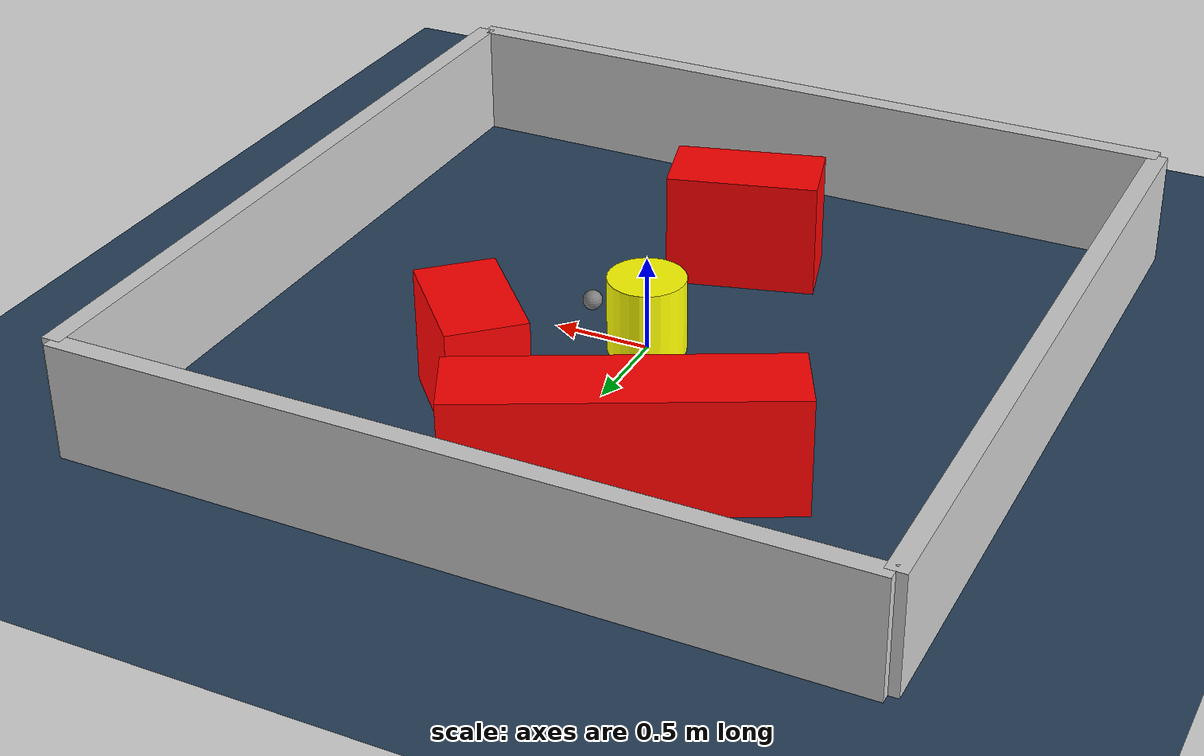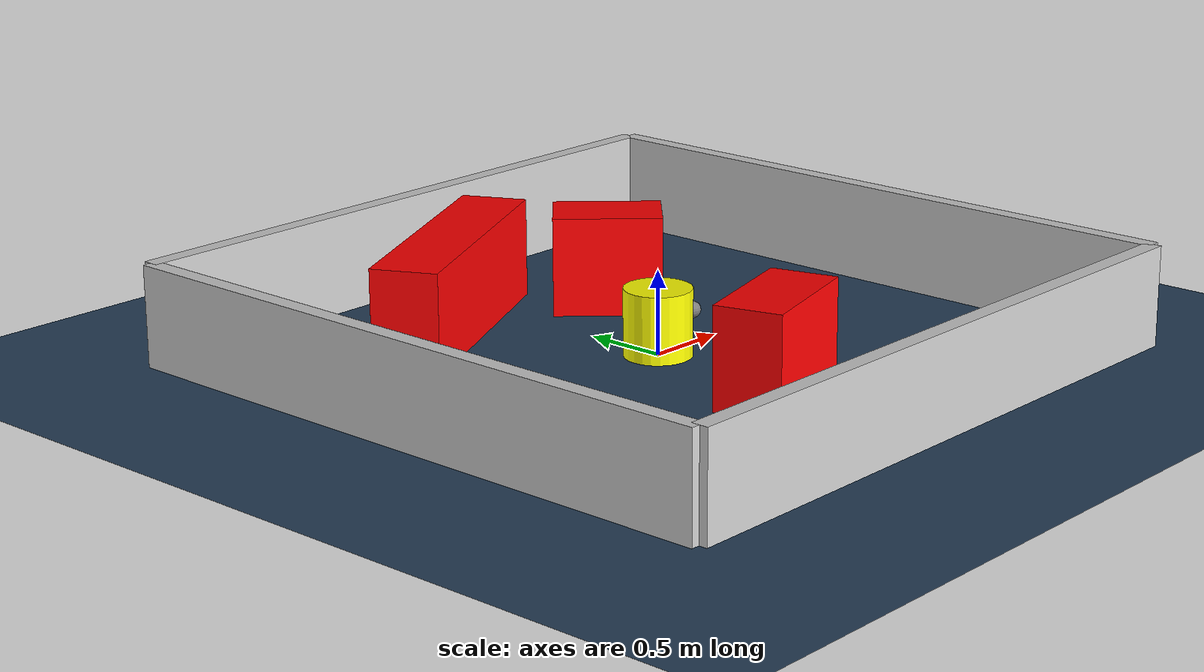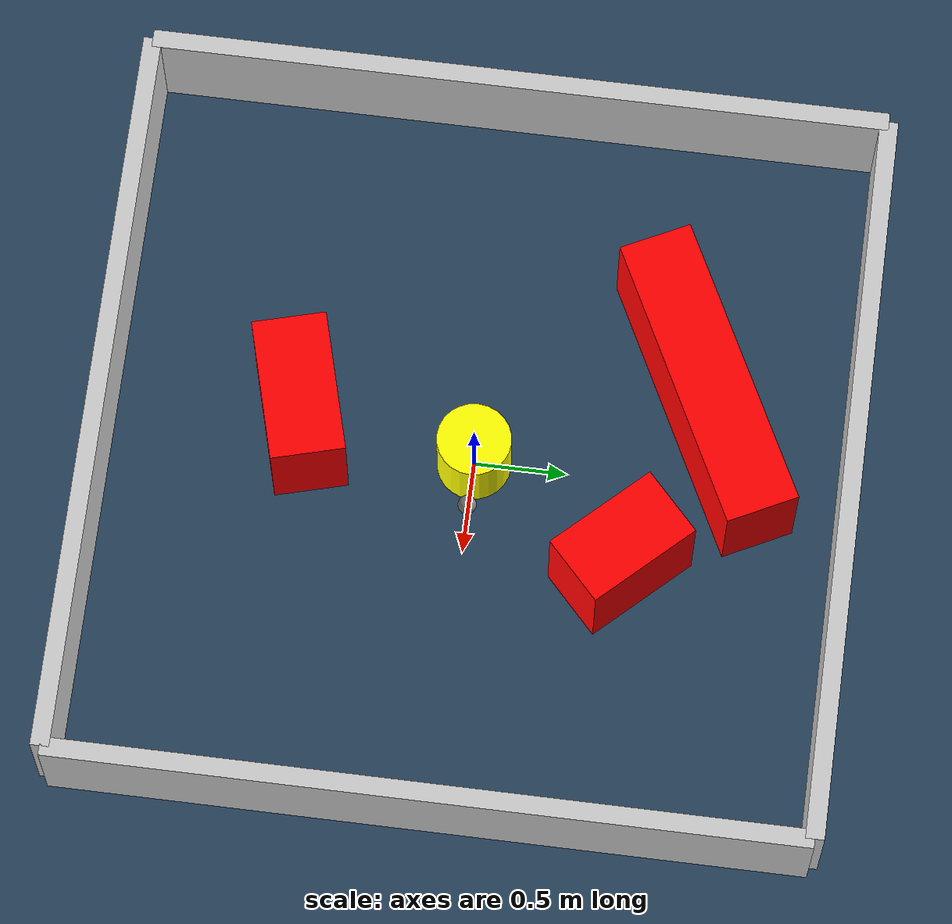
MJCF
<?xml version="1.0" ?>
<mujoco model="generated_environment">
  <option timestep="0.01" integrator="RK4" cone="elliptic"/>
  <default>
    <geom density="1"/>
  </default>
  <asset>
    <texture builtin="gradient" height="3072" rgb1="0.3 0.5 0.7" rgb2="0 0 0" type="skybox" width="512"/>
    <texture builtin="checker" height="300" mark="edge" markrgb="0.8 0.8 0.8" name="groundplane" rgb1="0.2 0.3 0.4" rgb2="0.1 0.2 0.3" type="2d" width="300"/>
    <material name="groundplane" reflectance="0.2" texrepeat="5 5" texture="groundplane" texuniform="true"/>
    <material name="robot" rgba="0.0 1.0 0.0 1"/>
  </asset>
  <worldbody>
    <light dir="0 0 -1" directional="true" pos="0 0 1.5"/>
    <geom condim="4" friction="1.0 0.005 0.001" material="groundplane" name="floor" size="0 0 0.05" type="plane"/>
    <body name="walls">
      <geom name="wall_1" condim="4" pos="-2.0 0.0 0.3" rgba="0.800000011920929 0.800000011920929 0.800000011920929 1.0" size="0.05 2.0 0.3" type="box"/>
      <geom name="wall_2" condim="4" pos="2.0 0.0 0.3" rgba="0.800000011920929 0.800000011920929 0.800000011920929 1.0" size="0.05 2.0 0.3" type="box"/>
      <geom name="wall_3" condim="4" pos="0.0 -2.0 0.3" rgba="0.800000011920929 0.800000011920929 0.800000011920929 1.0" size="2.0 0.05 0.3" type="box"/>
      <geom name="wall_4" condim="4" pos="0.0 2.0 0.3" rgba="0.800000011920929 0.800000011920929 0.800000011920929 1.0" size="2.0 0.05 0.3" type="box"/>
    </body>
    <body name="robot">
      <joint name="joint_x" type="slide" pos="0 0 0" axis="1 0 0"/>
      <joint name="joint_y" type="slide" pos="0 0 0" axis="0 1 0"/>
      <geom name="robot" type="sphere" pos="0.3 0.0 0.2" size="0.05" mass="5." friction="1.0 0.005 0.0001" condim="4" rgba="0.5 0.5 0.5 1.0"/>
      <site name="sensor_ball"/>
    </body>
    <body name="obstacle_movable_1">
      <geom name="obstacle_movable_1" condim="4" pos="0.0 0.0 0.2" euler="0 0 0.0" friction="1.0 0.005 0.001" rgba="1.0 1.0 0.0 1.0" size="0.2 0.2 0.0" type="cylinder" mass="0.1"/>
      <joint type="free"/>
    </body>
    <body name="obstacle_2_static">
      <geom name="obstacle_2_static" condim="4" pos="0.5040604426816109 0.8435839712495701 0.3" euler="0 0 133.07724271621925" friction="1.0 0.005 0.001" rgba="1 0 0 1" size="0.32592176685017643 0.2 0.3" type="box"/>
    </body>
    <body name="obstacle_3_static">
      <geom name="obstacle_3_static" condim="4" pos="-0.4605648794248648 1.189247675905546 0.3" euler="0 0 26.61301410885381" friction="1.0 0.005 0.001" rgba="1 0 0 1" size="0.8149683885302395 0.2 0.3" type="box"/>
    </body>
    <body name="obstacle_4_static">
      <geom name="obstacle_4_static" condim="4" pos="-0.1179080292682888 -0.9484684978644482 0.3" euler="0 0 195.30403603478018" friction="1.0 0.005 0.001" rgba="1 0 0 1" size="0.38636170774615247 0.2 0.3" type="box"/>
    </body>
  </worldbody>
  <actuator>
    <motor name="actuator_x" joint="joint_x" gear="1" ctrlrange="-1 1"/>
    <motor name="actuator_y" joint="joint_y" gear="1" ctrlrange="-1 1"/>
  </actuator>
</mujoco>
